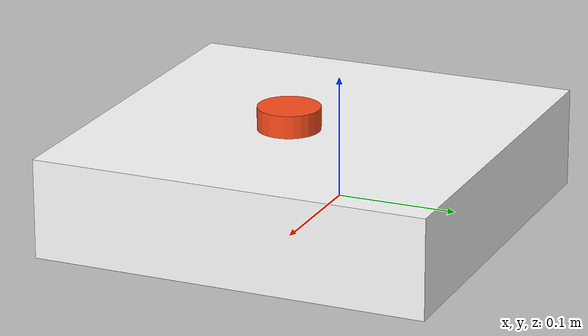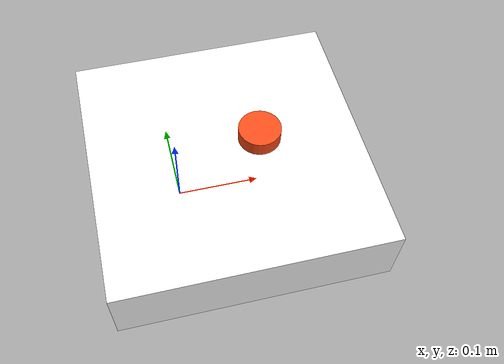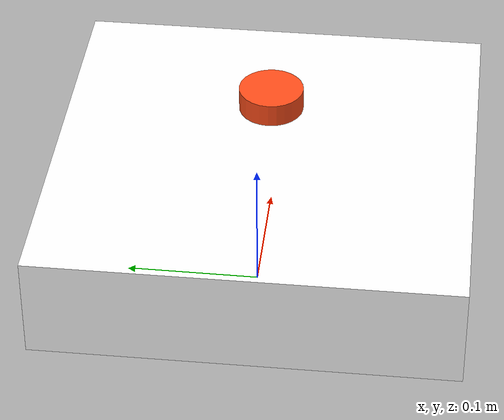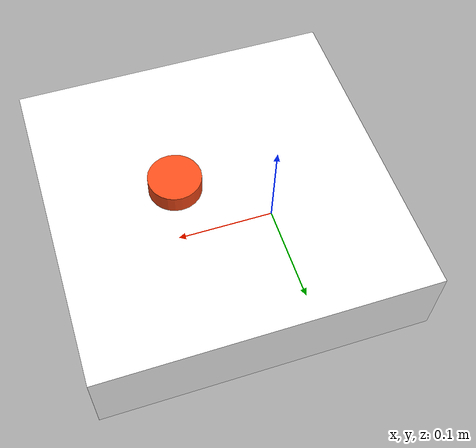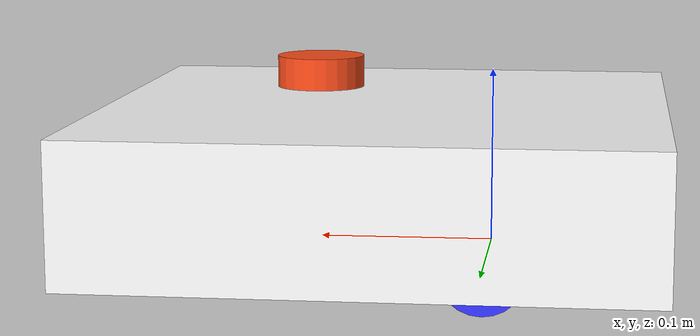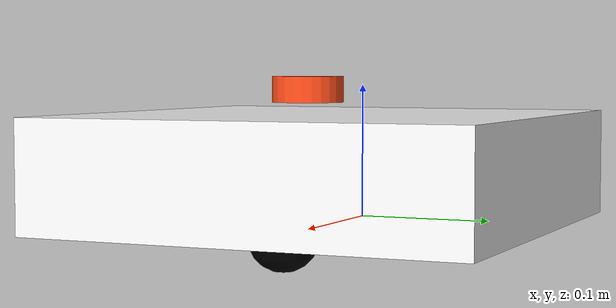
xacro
<?xml version="1.0"?>
<robot xmlns:xacro="http://www.ros.org/wiki/xacro"  name="rumbek">

    <xacro:arg name="use_ros2_control" default="true"/>

    <xacro:if value="$(arg use_ros2_control)">
        <xacro:include filename="ros2_control.xacro"/>
    </xacro:if>
    <xacro:unless value="$(arg use_ros2_control)">
        <xacro:include filename="gazebo_control.xacro"/>
    </xacro:unless>
    <xacro:include filename="robot_core.xacro"/>
    <xacro:include filename="lidar.xacro"/>

</robot>

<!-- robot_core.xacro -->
<robot xmlns:xacro="http://www.ros.org/wiki/xacro">

    <xacro:include filename="inertial_macros.xacro"/>

    <material name="white">
        <color rgba=" 1 1 1 1" />
    </material>
    <material name="orange">
        <color rgba=" 1 0.3 0.1 1" />
    </material>
    <material name="blue">
        <color rgba=" 0.2 0.2 1 1" />
    </material>
    <material name="black">
        <color rgba=" 0 0 0 1" />
    </material>

    <!-- BASE LINK -->

    <link name="base_link">
    </link>

    <!-- BASE FOOTPRINT LINK-->

    <joint name="base_footprint_joint" type="fixed">
        <parent link="base_link"/>
        <child link="base_footprint"/>
        <origin xyz="0 0 0" rpy="0 0 0 "/>
    </joint>

    <link name="base_footprint">
    </link>

    <!-- CHASSIS LINK-->

    <joint name ="chassis_joint" type="fixed">
        <parent link="base_link"/>
        <child link="chassis"/>
        <origin xyz="-0.1 0 0"/>
    </joint>

    <link name="chassis">
        <visual>
            <origin xyz="0.16 0 0.04"/>
            <geometry>
                <box size="0.32 0.32 0.08"/>
            </geometry>
            <material name="white"/>
        </visual>
        <collision>
            <origin xyz="0.16 0 0.04"/>
            <geometry>
                <box size="0.32 0.32 0.08"/>
            </geometry>
        </collision>
        <xacro:inertial_box mass="1" x="0.32" y="0.32" z="0.08">
            <origin xyz="0.16 0 0.04" rpy="0 0 0 "/>
        </xacro:inertial_box>
    </link>

    <!-- LEFT WHEEL LINK-->

    <joint name='left_wheel_joint' type="continuous">
        <parent link="base_link"/>
        <child link="left_wheel"/>
        <origin xyz="0 0.077 0 " rpy="-${pi/2} 0 0"/>
        <axis xyz="0 0 1"/>
    </joint>

    <link name="left_wheel">
        <visual>
            <geometry>
                <cylinder radius="0.025" length="0.018"/>
            </geometry>
            <material name="blue"/>
        </visual>
        <collision>
            <geometry>
                <cylinder radius="0.025" length="0.018"/>
            </geometry>
        </collision>
        <xacro:inertial_cylinder mass="0.03" length="0.018" radius="0.025">
            <origin xyz="0 0 0" rpy="0 0 0"/>
        </xacro:inertial_cylinder>
    </link>

    <!-- RIGHT WHEEL LINK-->

    <joint name='right_wheel_joint' type="continuous">
        <parent link="base_link"/>
        <child link="right_wheel"/>
        <origin xyz="0 -0.077 0 " rpy="${pi/2} 0 0"/>
        <axis xyz="0 0 -1"/>
    </joint>

    <link name="right_wheel">
        <visual>
            <geometry>
                <cylinder radius="0.025" length="0.018"/>
            </geometry>
            <material name="blue"/>
        </visual>
        <collision>
            <geometry>
                <cylinder radius="0.025" length="0.018"/>
            </geometry>
        </collision>
        <xacro:inertial_cylinder mass="0.03" length="0.018" radius="0.025">
            <origin xyz="0 0 0" rpy="0 0 0"/>
        </xacro:inertial_cylinder>
    </link>

    <!-- CASTER WHEEL LINK-->

    <joint name="caster_wheel_joint" type="fixed">
        <parent link="chassis"/>
        <child link="caster_wheel"/>
        <origin xyz="0.24 0 0 "/>
    </joint>

    <link name="caster_wheel">
        <visual>
            <geometry>
                <sphere radius="0.025"/>
            </geometry>
            <material name="black"/>
        </visual>
        <collision>
            <geometry>
                <sphere radius="0.025"/>
            </geometry>
        </collision>
        <xacro:inertial_sphere mass="0.02" radius="0.025">
            <origin xyz="0 0 0" rpy="0 0 0"/>
        </xacro:inertial_sphere>
    </link>
    <gazebo reference="caster_wheel">
        <mu1> 0 </mu1>
        <mu2> 0 </mu2>
    </gazebo>

    <!-- LASER FRAME-->
    <joint name="laser_frame_joint" type="fixed">
        <parent link="base_link"/>
        <child link="laser_frame"/>
        <origin xyz="0 0 0" rpy="0 0 0"/>
    </joint>

    <link name="laser_frame">
        <visual>
            <geometry>
                <cylinder radius="0.025" length="0.018"/>
            </geometry>
            <material name="orange"/>
        </visual>
        <collision>
            <geometry>
                <cylinder radius="0.025" length="0.018"/>
            </geometry>
        </collision>
        <xacro:inertial_cylinder mass="0.03" length="0.018" radius="0.025">
            <origin xyz="0 0 0" rpy="0 0 0"/>
        </xacro:inertial_cylinder>
    </link>
</robot>

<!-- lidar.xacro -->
<robot xmlns:xacro="http://www.ros.org/wiki/xacro"  name="rumbek">

    <joint name="laser_joint" type="fixed">
        <parent link="base_link"/>
        <child link="my_custom_model/base_link/laser"/>
        <origin xyz="0.1 0 0.098" rpy="0 0 0"/>
    </joint>

    <link name="my_custom_model/base_link/laser">
        <visual>
            <geometry>
                <cylinder radius="0.025" length="0.018"/>
            </geometry>
            <material name="orange"/>
        </visual>
        <collision>
            <geometry>
                <cylinder radius="0.025" length="0.018"/>
            </geometry>
        </collision>
        <xacro:inertial_cylinder mass="0.03" length="0.018" radius="0.025">
            <origin xyz="0 0 0" rpy="0 0 0"/>
        </xacro:inertial_cylinder>
    </link>

    <gazebo reference="my_custom_model/base_link/laser">
        <material>Gazebo/Orange</material>
        <sensor name="laser" type="gpu_lidar">
            <always_on>true</always_on>
            <visualize>true</visualize>
            <pose>0 0 0 0 0 0</pose>
            <update_rate>10</update_rate>
            <topic>scan</topic>
            <lidar>
                <scan>
                    <horizontal>
                        <samples>360</samples>
                        <resolution>1</resolution>
                        <min_angle>-3.14</min_angle>
                        <max_angle>3.14</max_angle>
                    </horizontal>
                </scan>
                <range>
                    <min>0.3</min>
                    <max>12</max>
                    <resolution>0.01</resolution>
                </range>
            </lidar>
        </sensor>
    </gazebo>

</robot>
